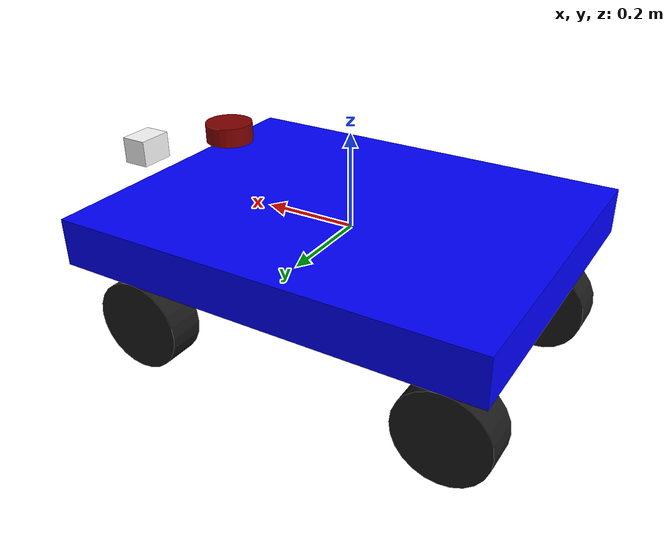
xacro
<?xml version="1.0"?>

<robot name="hiwonder" xmlns:xacro="http://ros.org/wiki/xacro">

  <gazebo>

    <plugin
        filename="gz-sim-ackermann-steering-system"
        name="gz::sim::systems::AckermannSteering">
        <left_joint>front_left_wheel_joint</left_joint>
        <left_joint>rear_left_wheel_joint</left_joint>
        <right_joint>front_right_wheel_joint</right_joint>
        <right_joint>rear_right_wheel_joint</right_joint>
        <left_steering_joint>front_left_wheel_joint_steering</left_steering_joint>
        <right_steering_joint>front_right_wheel_joint_steering</right_steering_joint>
        <wheel_separation>0.7</wheel_separation>
        <wheel_base>0.5</wheel_base>
        <wheel_radius>0.1</wheel_radius>
        <odom_publish_frequency>50</odom_publish_frequency>
        <topic>cmd_vel</topic>
    </plugin>

    <plugin
        filename="gz-sim-joint-state-publisher-system"
        name="gz::sim::systems::JointStatePublisher">
        <topic>joint_states</topic>
    </plugin>

    <plugin
      filename="gz-sim-sensors-system"
      name="gz::sim::systems::Sensors">
      <render_engine>ogre2</render_engine>
    </plugin>

  </gazebo>

  <link name="base_link">
    <visual>
      <geometry>
        <box size="0.9 0.7 0.1"/>
      </geometry>
      <material name="blue">
        <color rgba="0.0 0.0 1.0 1.0"/>
      </material>
    </visual>

    <collision>
      <geometry>
        <box size="0.9 0.7 0.1"/>
      </geometry>
    </collision>

    <inertial>
      <mass value="5.0"/>
      <origin xyz="0 0 0" rpy="0 0 0"/>
      <inertia ixx="0.5" ixy="0.0" ixz="0.0"
               iyy="0.5" iyz="0.0"
               izz="0.5"/>
    </inertial>
  </link>

  <link name="lidar_link">
    <visual>
      <geometry>
        <cylinder radius="0.05" length="0.04"/>
      </geometry>
      <material name="maroon">
        <color rgba="0.5 0.0 0.0 1.0"/>
      </material>
    </visual>

    <collision>
      <geometry>
        <cylinder radius="0.05" length="0.04"/>
      </geometry>
    </collision>

    <inertial>
      <mass value="0.1"/>
      <origin xyz="0 0 0" rpy="0 0 0"/>
      <inertia ixx="0.001" ixy="0.0" ixz="0.0"
              iyy="0.001" iyz="0.0"
              izz="0.001"/>
    </inertial>
  </link>

  <joint name="lidar_joint" type="fixed">
    <origin xyz="0.3 0 0.15" rpy="0 0 0"/>
    <parent link="base_link"/>
    <child link="lidar_link"/>
  </joint>

  <gazebo reference="lidar_link">

    <sensor name='gpu_lidar' type='gpu_lidar'>
      <pose>0 0 0 0 0 0</pose>
      <topic>lidar</topic>
      <update_rate>10</update_rate>
      <frame_id>lidar_link</frame_id>
      <ray>
          <scan>
              <horizontal>
                  <samples>640</samples>
                  <resolution>1</resolution>
                  <min_angle>-1.396263</min_angle>
                  <max_angle>1.396263</max_angle>
              </horizontal>
              <vertical>
                  <samples>1</samples>
                  <resolution>0.01</resolution>
                  <min_angle>0</min_angle>
                  <max_angle>0</max_angle>
              </vertical>
          </scan>
          <range>
              <min>0.08</min>
              <max>10.0</max>
              <resolution>0.01</resolution>
          </range>
      </ray>
      <always_on>1</always_on>
      <visualize>true</visualize>
    </sensor>

  </gazebo>

  <link name="camera_link">
    <visual>
      <geometry>
        <box size="0.06 0.08 0.06"/>
      </geometry>
      <material name="white">
        <color rgba="1.0 1.0 1.0 1.0"/>
      </material>
    </visual>

    <collision>
      <geometry>
        <box size="0.06 0.08 0.06"/>
      </geometry>
    </collision>

    <inertial>
      <mass value="0.05"/>
      <origin xyz="0 0 0" rpy="0 0 0"/>
      <inertia ixx="0.001" ixy="0.0" ixz="0.0"
              iyy="0.001" iyz="0.0"
              izz="0.001"/>
    </inertial>
  </link>

  <joint name="camera_joint" type="fixed">
    <origin xyz="0.55 0 0.065" rpy="0 0 0"/>
    <parent link="base_link"/>
    <child link="camera_link"/>
  </joint>

  <gazebo reference="camera_link">
    <sensor name="camera" type="camera">
      <pose>0 0 0 0 0 0</pose>
      <topic>camera</topic>
      <update_rate>30</update_rate>
      <frame_id>camera_link</frame_id>
      <camera>
        <horizontal_fov>1.047198</horizontal_fov>
        <visibility_mask>268435454</visibility_mask>
        <image>
          <width>640</width>
          <height>480</height>
          <format>R8G8B8</format>
        </image>
        <clip>
          <near>0.5</near>
          <far>300</far>
        </clip>
      </camera>
      <always_on>1</always_on>
      <visualize>true</visualize>
    </sensor>
  </gazebo>

   <!-- Wheel Macro -->
  <xacro:macro name="rear_wheel" params="name x y">
    <link name="${name}">
      <visual>
        <geometry>
          <cylinder length="0.08" radius="0.1"/>
        </geometry>
        <material name="black">
          <color rgba="0.1 0.1 0.1 1.0"/>
        </material>
      </visual>
      <collision>
        <geometry>
          <cylinder length="0.08" radius="0.1"/>
        </geometry>
      </collision>
      <inertial>
        <mass value="0.2"/>
        <origin xyz="0 0 0" rpy="0 0 0"/>
        <inertia ixx="0.01" ixy="0" ixz="0"
                 iyy="0.01" iyz="0"
                 izz="0.01"/>
      </inertial>
    </link>

    <joint name="${name}_joint" type="continuous">
      <origin xyz="${x} ${y} -0.2" rpy="1.5708 0 0"/>
      <parent link="base_link"/>
      <child link="${name}"/>
      <axis xyz="0 0 -1"/>
    </joint>
  </xacro:macro>

  <xacro:macro name="front_wheel" params="name x y">
    <link name="${name}">
      <visual>
        <geometry>
          <cylinder length="0.08" radius="0.1"/>
        </geometry>
        <material name="black">
          <color rgba="0.1 0.1 0.1 1.0"/>
        </material>
      </visual>
      <collision>
        <geometry>
          <cylinder length="0.08" radius="0.1"/>
        </geometry>
      </collision>
      <inertial>
        <mass value="0.2"/>
        <origin xyz="0 0 0" rpy="0 0 0"/>
        <inertia ixx="0.01" ixy="0" ixz="0"
                 iyy="0.01" iyz="0"
                 izz="0.01"/>
      </inertial>
    </link>

    <link name="${name}_steering">
      <inertial>
      <mass value="0.001"/>
      <origin xyz="0 0 0" rpy="0 0 0"/>
      <inertia ixx="0.00001" ixy="0.0" ixz="0.0"
              iyy="0.00001" iyz="0.0"
              izz="0.00001"/>
    </inertial>
    </link>

    <joint name="${name}_joint_steering" type="revolute">
      <origin xyz="${x} ${y} -0.2" rpy="0 0 0"/>
      <parent link="base_link"/>
      <child link="${name}_steering"/>
      <axis xyz="0 0 1"/>
      <limit lower="-0.5" upper="0.5" effort="10" velocity="1.0"/>
    </joint>
    <joint name="${name}_joint" type="continuous">
      <origin xyz="0 0 0" rpy="1.5708 0 0"/>
      <parent link="${name}_steering"/>
      <child link="${name}"/>
      <axis xyz="0 0 -1"/>
    </joint>

  </xacro:macro>

  <xacro:front_wheel name="front_left_wheel"  x="0.35" y="0.25"/>
  <xacro:front_wheel name="front_right_wheel" x="0.35" y="-0.25"/>
  <xacro:rear_wheel name="rear_left_wheel"   x="-0.35" y="0.25"/>
  <xacro:rear_wheel name="rear_right_wheel"  x="-0.35" y="-0.25"/>

<gazebo reference="lidar_link">
  <visual>
    <visibility_flags>1</visibility_flags>
  </visual>
</gazebo>

<gazebo reference="camera_link">
  <visual>
    <visibility_flags>1</visibility_flags>
  </visual>
</gazebo>

<gazebo reference="front_left_wheel">
  <visual>
    <visibility_flags>1</visibility_flags>
  </visual>
</gazebo>

<gazebo reference="front_right_wheel">
  <visual>
    <visibility_flags>1</visibility_flags>
  </visual>
</gazebo>

<gazebo reference="rear_left_wheel">
  <visual>
    <visibility_flags>1</visibility_flags>
  </visual>
</gazebo>

<gazebo reference="rear_right_wheel">
  <visual>
    <visibility_flags>1</visibility_flags>
  </visual>
</gazebo>

</robot>
